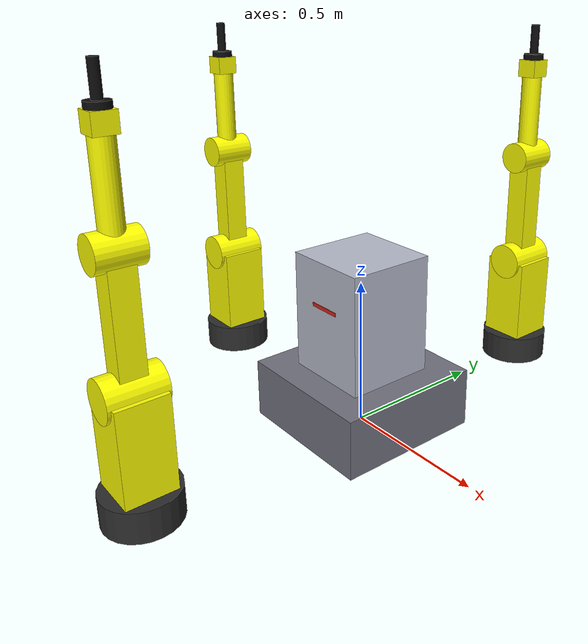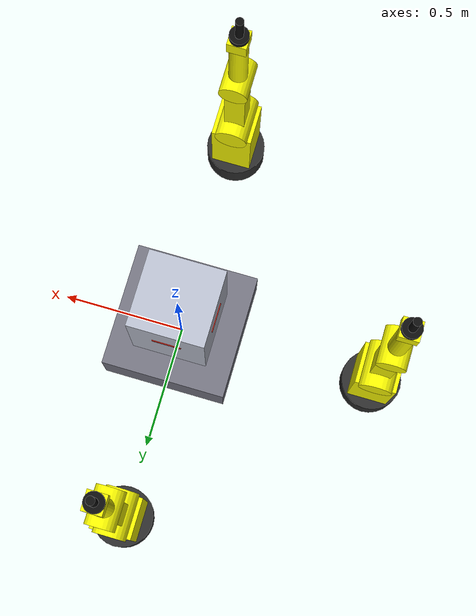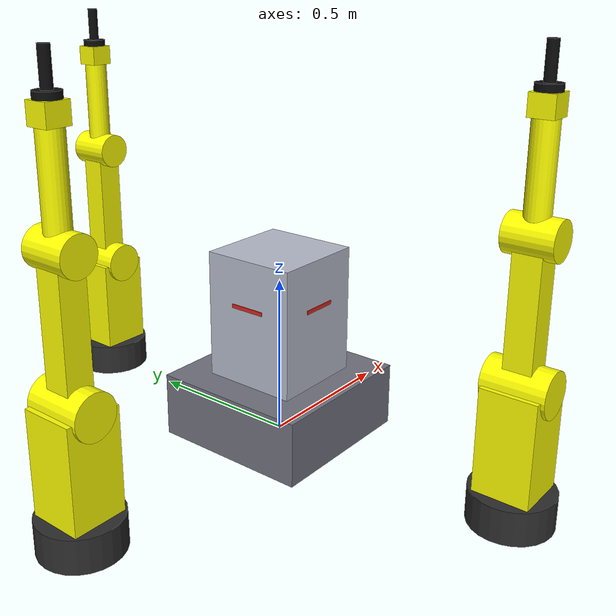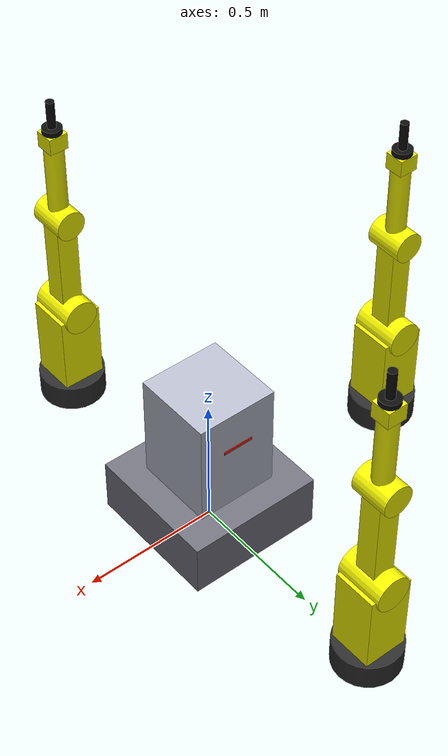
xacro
<?xml version="1.0"?>
<robot name="cellule" xmlns:xacro="http://www.ros.org/wiki/xacro">

  <xacro:include filename="$(find autoweld_x_control)/robots/bras_3ddl.xacro"/>
  <xacro:include filename="$(find autoweld_x_control)/robots/piece_a_souder.xacro"/>

  <!-- Repere fixe de la scene -->
  <link name="world"/>

  <!-- Piece a souder, au centre -->
  <xacro:piece_a_souder parent="world"/>

  <!-- Robot A a l'ouest, robot B au sud, robot C au nord : tous face a la piece -->
  <xacro:bras_3ddl prefix="robot_a_" parent="world" x="-0.8" y="0.0" z="0.0"/>
  <xacro:bras_3ddl prefix="robot_b_" parent="world" x="0.0" y="-0.8" z="0.0"/>
  <xacro:bras_3ddl prefix="robot_c_" parent="world" x="0.0" y="0.8" z="0.0"/>

  <!-- Plugin qui relie ros2_control a Gazebo -->
  <gazebo>
    <plugin filename="gz_ros2_control-system" name="gz_ros2_control::GazeboSimROS2ControlPlugin">
      <parameters>$(find autoweld_x_control)/config/controllers.yaml</parameters>
    </plugin>
  </gazebo>
</robot>

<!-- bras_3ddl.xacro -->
<robot xmlns:xacro="http://www.ros.org/wiki/xacro">

  <!-- Inertie simple, reutilisee pour chaque maillon -->
  <xacro:macro name="inertie" params="z">
    <inertial>
      <origin xyz="0 0 ${z}" rpy="0 0 0"/>
      <mass value="1.0"/>
      <inertia ixx="0.01" ixy="0" ixz="0" iyy="0.01" iyz="0" izz="0.01"/>
    </inertial>
  </xacro:macro>

  <!-- Commande d'une articulation par ros2_control -->
  <xacro:macro name="commande" params="nom">
    <joint name="${nom}">
      <command_interface name="position"/>
      <state_interface name="position"/>
      <state_interface name="velocity"/>
    </joint>
  </xacro:macro>

  <!-- Bras a 3 articulations -->
  <xacro:macro name="bras_3ddl" params="prefix parent x y z">

    <!-- Fixation du socle sur la scene -->
    <joint name="${prefix}fixation" type="fixed">
      <parent link="${parent}"/>
      <child link="${prefix}base_link"/>
      <origin xyz="${x} ${y} ${z}" rpy="0 0 0"/>
    </joint>

    <!-- Socle : gris fonce -->
    <link name="${prefix}base_link">
      <visual>
        <origin xyz="0 0 0.05" rpy="0 0 0"/>
        <geometry><cylinder radius="0.12" length="0.10"/></geometry>
        <material name="${prefix}gris_fonce"><color rgba="0.175 0.175 0.175 1"/></material>
      </visual>
      <collision>
        <origin xyz="0 0 0.05" rpy="0 0 0"/>
        <geometry><cylinder radius="0.12" length="0.10"/></geometry>
      </collision>
      <xacro:inertie z="0.05"/>
    </link>

    <!-- Articulation 1 : rotation de la base (axe vertical) -->
    <joint name="${prefix}joint_1" type="revolute">
      <parent link="${prefix}base_link"/>
      <child link="${prefix}link_1"/>
      <origin xyz="0 0 0.10" rpy="0 0 0"/>
      <axis xyz="0 0 1"/>
      <limit lower="-3.14" upper="3.14" effort="50" velocity="1.5"/>
    </joint>

    <!-- Colonne : bloc jaune -->
    <link name="${prefix}link_1">
      <visual>
        <origin xyz="0 0 0.15" rpy="0 0 0"/>
        <geometry><box size="0.16 0.16 0.30"/></geometry>
        <material name="${prefix}jaune_colonne"><color rgba="1 1 0 1"/></material>
      </visual>
      <collision>
        <origin xyz="0 0 0.15" rpy="0 0 0"/>
        <geometry><cylinder radius="0.06" length="0.30"/></geometry>
      </collision>
      <xacro:inertie z="0.15"/>
    </link>

    <!-- Articulation 2 : epaule (axe horizontal) -->
    <joint name="${prefix}joint_2" type="revolute">
      <parent link="${prefix}link_1"/>
      <child link="${prefix}link_2"/>
      <origin xyz="0 0 0.30" rpy="0 0 0"/>
      <axis xyz="0 1 0"/>
      <limit lower="-1.57" upper="1.57" effort="50" velocity="1.5"/>
    </joint>

    <!-- Bras : moyeu d'epaule + bras jaunes -->
    <link name="${prefix}link_2">
      <visual>
        <origin xyz="0 0 0" rpy="1.5708 0 0"/>
        <geometry><cylinder radius="0.065" length="0.18"/></geometry>
        <material name="${prefix}jaune_moyeu_epaule"><color rgba="1 1 0 1"/></material>
      </visual>
      <visual>
        <origin xyz="0 0 0.20" rpy="0 0 0"/>
        <geometry><box size="0.08 0.08 0.40"/></geometry>
        <material name="${prefix}jaune_bras"><color rgba="1 1 0 1"/></material>
      </visual>
      <collision>
        <origin xyz="0 0 0.20" rpy="0 0 0"/>
        <geometry><box size="0.08 0.08 0.40"/></geometry>
      </collision>
      <xacro:inertie z="0.20"/>
    </link>

    <!-- Articulation 3 : coude (axe horizontal) -->
    <joint name="${prefix}joint_3" type="revolute">
      <parent link="${prefix}link_2"/>
      <child link="${prefix}link_3"/>
      <origin xyz="0 0 0.40" rpy="0 0 0"/>
      <axis xyz="0 1 0"/>
      <limit lower="-2.0" upper="2.0" effort="30" velocity="1.5"/>
    </joint>

    <!-- Avant-bras : moyeu de coude, tube et bloc de poignet jaunes -->
    <link name="${prefix}link_3">
      <visual>
        <origin xyz="0 0 0" rpy="1.5708 0 0"/>
        <geometry><cylinder radius="0.055" length="0.14"/></geometry>
        <material name="${prefix}jaune_moyeu_coude"><color rgba="1 1 0 1"/></material>
      </visual>
      <visual>
        <origin xyz="0 0 0.145" rpy="0 0 0"/>
        <geometry><cylinder radius="0.035" length="0.29"/></geometry>
        <material name="${prefix}jaune_avant_bras"><color rgba="1 1 0 1"/></material>
      </visual>
      <visual>
        <origin xyz="0 0 0.32" rpy="0 0 0"/>
        <geometry><box size="0.07 0.07 0.06"/></geometry>
        <material name="${prefix}jaune_poignet"><color rgba="1 1 0 1"/></material>
      </visual>
      <collision>
        <origin xyz="0 0 0.175" rpy="0 0 0"/>
        <geometry><box size="0.06 0.06 0.35"/></geometry>
      </collision>
      <xacro:inertie z="0.175"/>
    </link>

    <!-- Torche de soudage fictive : noire -->
    <joint name="${prefix}fixation_outil" type="fixed">
      <parent link="${prefix}link_3"/>
      <child link="${prefix}tool0"/>
      <origin xyz="0 0 0.35" rpy="0 0 0"/>
    </joint>

    <link name="${prefix}tool0">
      <visual>
        <origin xyz="0 0 0.01" rpy="0 0 0"/>
        <geometry><cylinder radius="0.035" length="0.02"/></geometry>
        <material name="${prefix}noir_disque"><color rgba="0.05 0.05 0.05 1"/></material>
      </visual>
      <visual>
        <origin xyz="0 0 0.07" rpy="0 0 0"/>
        <geometry><cylinder radius="0.015" length="0.10"/></geometry>
        <material name="${prefix}noir_torche"><color rgba="0.05 0.05 0.05 1"/></material>
      </visual>
      <collision>
        <origin xyz="0 0 0.06" rpy="0 0 0"/>
        <geometry><cylinder radius="0.02" length="0.12"/></geometry>
      </collision>
      <xacro:inertie z="0.06"/>
    </link>

    <!-- Interface ros2_control : commande en position des 3 articulations -->
    <ros2_control name="${prefix}systeme" type="system">
      <hardware>
        <plugin>gz_ros2_control/GazeboSimSystem</plugin>
      </hardware>
      <xacro:commande nom="${prefix}joint_1"/>
      <xacro:commande nom="${prefix}joint_2"/>
      <xacro:commande nom="${prefix}joint_3"/>
    </ros2_control>

  </xacro:macro>
</robot>

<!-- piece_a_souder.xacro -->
<robot xmlns:xacro="http://www.ros.org/wiki/xacro">

  <!-- Piece a souder : socle + piece metallique + 3 cordons de soudure (visuels) -->
  <xacro:macro name="piece_a_souder" params="parent">

    <joint name="fixation_piece" type="fixed">
      <parent link="${parent}"/>
      <child link="piece_a_souder"/>
      <origin xyz="0 0 0" rpy="0 0 0"/>
    </joint>

    <link name="piece_a_souder">
      <inertial>
        <origin xyz="0 0 0.30" rpy="0 0 0"/>
        <mass value="20.0"/>
        <inertia ixx="1.0" ixy="0" ixz="0" iyy="1.0" iyz="0" izz="1.0"/>
      </inertial>

      <!-- Socle 0.50 x 0.50 x 0.20 -->
      <visual>
        <origin xyz="0 0 0.10" rpy="0 0 0"/>
        <geometry><box size="0.50 0.50 0.20"/></geometry>
        <material name="socle_gris"><color rgba="0.45 0.45 0.50 1"/></material>
      </visual>
      <collision>
        <origin xyz="0 0 0.10" rpy="0 0 0"/>
        <geometry><box size="0.50 0.50 0.20"/></geometry>
      </collision>

      <!-- Piece metallique 0.30 x 0.30 x 0.40 (de z=0.20 a z=0.60) -->
      <visual>
        <origin xyz="0 0 0.40" rpy="0 0 0"/>
        <geometry><box size="0.30 0.30 0.40"/></geometry>
        <material name="piece_acier"><color rgba="0.72 0.74 0.80 1"/></material>
      </visual>
      <collision>
        <origin xyz="0 0 0.40" rpy="0 0 0"/>
        <geometry><box size="0.30 0.30 0.40"/></geometry>
      </collision>

      <!-- Cordons de soudure : A face ouest, B face sud, C face nord -->
      <visual>
        <origin xyz="-0.15 0 0.45" rpy="0 0 0"/>
        <geometry><box size="0.006 0.114 0.012"/></geometry>
        <material name="cordon_a"><color rgba="0.85 0.15 0.10 1"/></material>
      </visual>
      <visual>
        <origin xyz="0 -0.15 0.45" rpy="0 0 0"/>
        <geometry><box size="0.114 0.006 0.012"/></geometry>
        <material name="cordon_b"><color rgba="0.85 0.15 0.10 1"/></material>
      </visual>
      <visual>
        <origin xyz="0 0.15 0.45" rpy="0 0 0"/>
        <geometry><box size="0.114 0.006 0.012"/></geometry>
        <material name="cordon_c"><color rgba="0.85 0.15 0.10 1"/></material>
      </visual>
    </link>

  </xacro:macro>
</robot>
